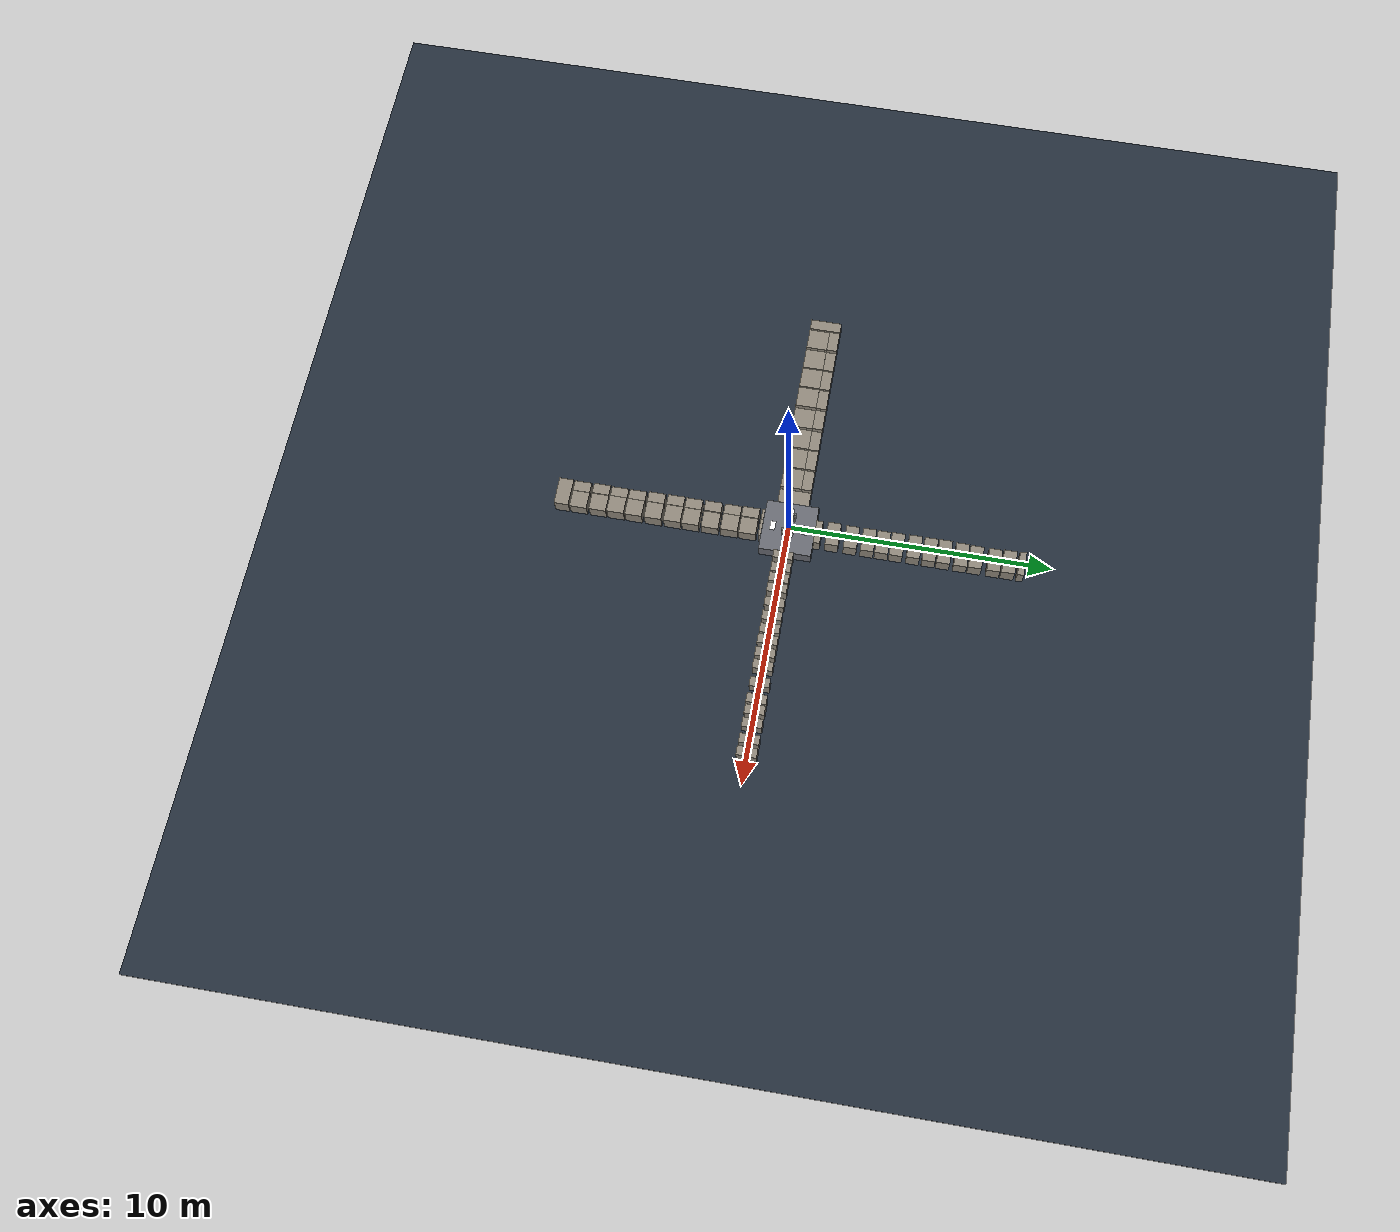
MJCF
<mujoco model="two_row_stones_cross_1_4_7_10">
  <include file="b2.xml"/>
  <statistic center="0 0 0.12" extent="1.35" />
  <visual>
    <headlight diffuse="0.6 0.6 0.6" ambient="0.3 0.3 0.3" specular="0 0 0" />
    <rgba haze="0.15 0.25 0.35 1" />
    <global azimuth="-130" elevation="-20" />
  </visual>
  <asset>
    <texture type="skybox" builtin="gradient" rgb1="0.3 0.5 0.7" rgb2="0 0 0" width="512" height="3072" />
    <texture type="2d" name="groundplane" builtin="checker" mark="edge" rgb1="0.18 0.22 0.28" rgb2="0.10 0.14 0.18" markrgb="0.8 0.8 0.8" width="300" height="300" />
    <material name="groundplane" texture="groundplane" texuniform="true" texrepeat="5 5" reflectance="0.0" />
    <texture name="tex_label_1" type="2d" file="./imgs/label_1.png" />
    <material name="mat_label_1" texture="tex_label_1" specular="0" shininess="0" emission="1" texrepeat="1 1" rgba="1 1 1 1" />
    <texture name="tex_label_7" type="2d" file="./imgs/label_7.png" />
    <material name="mat_label_7" texture="tex_label_7" specular="0" shininess="0" emission="1" texrepeat="1 1" rgba="1 1 1 1" />
    <texture name="tex_label_10" type="2d" file="./imgs/label_10.png" />
    <material name="mat_label_10" texture="tex_label_10" specular="0" shininess="0" emission="1" texrepeat="1 1" rgba="1 1 1 1" />
    <texture name="tex_label_4" type="2d" file="./imgs/label_4.png" />
    <material name="mat_label_4" texture="tex_label_4" specular="0" shininess="0" emission="1" texrepeat="1 1" rgba="1 1 1 1" />
  </asset>
  <worldbody>
    <light pos="0 0 1.5" dir="0 0 -1" directional="true" />

    <geom name="pit_floor" pos="0 0 -0.65" size="20 20 0.05" type="box" material="groundplane" />
    <geom name="hub" pos="0 0 -0.3" type="box" size="1.0 1.0 0.3" rgba="0.40 0.41 0.44 1" />

    <!-- neg_x direction, level 1, curriculum row 0, difficulty=0.0, stone_size=0.80m, gap choices=1..2 cells -->
    <geom name="neg_x_stone_01_merged" pos="-1.275 0 -0.2975" type="box" size="0.275 0.6 0.3025" rgba="0.55 0.52 0.47 1" />
    <geom name="neg_x_stone_02_row_a" pos="-2.05 0.4 -0.2975" type="box" size="0.4 0.2 0.3025" rgba="0.55 0.52 0.47 1" />
    <geom name="neg_x_stone_03_row_b" pos="-2.05 -0.2 -0.29" type="box" size="0.4 0.4 0.31" rgba="0.55 0.52 0.47 1" />
    <geom name="neg_x_stone_04_row_a" pos="-2.9 0.4 -0.2825" type="box" size="0.4 0.2 0.3175" rgba="0.55 0.52 0.47 1" />
    <geom name="neg_x_stone_05_row_b" pos="-2.9 -0.2 -0.29" type="box" size="0.4 0.4 0.31" rgba="0.55 0.52 0.47 1" />
    <geom name="neg_x_stone_06_row_a" pos="-3.75 0.4 -0.2975" type="box" size="0.4 0.2 0.3025" rgba="0.55 0.52 0.47 1" />
    <geom name="neg_x_stone_07_row_b" pos="-3.75 -0.2 -0.2825" type="box" size="0.4 0.4 0.3175" rgba="0.55 0.52 0.47 1" />
    <geom name="neg_x_stone_08_row_a" pos="-4.65 0.4 -0.2825" type="box" size="0.4 0.2 0.3175" rgba="0.55 0.52 0.47 1" />
    <geom name="neg_x_stone_09_row_b" pos="-4.65 -0.2 -0.2975" type="box" size="0.4 0.4 0.3025" rgba="0.55 0.52 0.47 1" />
    <geom name="neg_x_stone_10_row_a" pos="-5.55 0.4 -0.2975" type="box" size="0.4 0.2 0.3025" rgba="0.55 0.52 0.47 1" />
    <geom name="neg_x_stone_11_row_b" pos="-5.55 -0.2 -0.2825" type="box" size="0.4 0.4 0.3175" rgba="0.55 0.52 0.47 1" />
    <geom name="neg_x_stone_12_row_a" pos="-6.4 0.4 -0.29" type="box" size="0.4 0.2 0.31" rgba="0.55 0.52 0.47 1" />
    <geom name="neg_x_stone_13_row_b" pos="-6.4 -0.2 -0.2825" type="box" size="0.4 0.4 0.3175" rgba="0.55 0.52 0.47 1" />
    <geom name="neg_x_stone_14_row_a" pos="-7.25 0.4 -0.2975" type="box" size="0.4 0.2 0.3025" rgba="0.55 0.52 0.47 1" />
    <geom name="neg_x_stone_15_row_b" pos="-7.25 -0.2 -0.29" type="box" size="0.4 0.4 0.31" rgba="0.55 0.52 0.47 1" />
    <geom name="neg_x_stone_16_row_a" pos="-8.15 0.4 -0.2825" type="box" size="0.4 0.2 0.3175" rgba="0.55 0.52 0.47 1" />
    <geom name="neg_x_stone_17_row_b" pos="-8.15 -0.2 -0.2975" type="box" size="0.4 0.4 0.3025" rgba="0.55 0.52 0.47 1" />
    <geom name="neg_x_stone_18_merged" pos="-8.8 0 -0.29" type="box" size="0.2 0.6 0.31" rgba="0.55 0.52 0.47 1" />
    <geom name="neg_x_label" pos="-0.62 0 0.002" type="box" size="0.18 0.1 0.0001" material="mat_label_1" contype="0" conaffinity="0" group="1" rgba="1 1 1 1" />

    <!-- pos_y direction, level 7, curriculum row 6, difficulty=0.6, stone_size=0.50m, gap choices=1..4 cells -->
    <geom name="pos_y_stone_01_row_a" pos="0.25 1.125 -0.2675" type="box" size="0.2 0.125 0.3325" rgba="0.55 0.52 0.47 1" />
    <geom name="pos_y_stone_02_row_b" pos="-0.2 1.125 -0.275" type="box" size="0.25 0.125 0.325" rgba="0.55 0.52 0.47 1" />
    <geom name="pos_y_stone_03_row_a" pos="0.25 1.7 -0.2525" type="box" size="0.2 0.25 0.3475" rgba="0.55 0.52 0.47 1" />
    <geom name="pos_y_stone_04_row_b" pos="-0.2 1.7 -0.245" type="box" size="0.25 0.25 0.355" rgba="0.55 0.52 0.47 1" />
    <geom name="pos_y_stone_05_row_a" pos="0.25 2.4 -0.26" type="box" size="0.2 0.25 0.34" rgba="0.55 0.52 0.47 1" />
    <geom name="pos_y_stone_06_row_b" pos="-0.2 2.4 -0.275" type="box" size="0.25 0.25 0.325" rgba="0.55 0.52 0.47 1" />
    <geom name="pos_y_stone_07_merged" pos="0 3.05 -0.2675" type="box" size="0.45 0.25 0.3325" rgba="0.55 0.52 0.47 1" />
    <geom name="pos_y_stone_08_merged" pos="0 3.6 -0.275" type="box" size="0.45 0.25 0.325" rgba="0.55 0.52 0.47 1" />
    <geom name="pos_y_stone_09_row_a" pos="0.25 4.15 -0.275" type="box" size="0.2 0.25 0.325" rgba="0.55 0.52 0.47 1" />
    <geom name="pos_y_stone_10_row_b" pos="-0.2 4.15 -0.26" type="box" size="0.25 0.25 0.34" rgba="0.55 0.52 0.47 1" />
    <geom name="pos_y_stone_11_row_a" pos="0.25 4.8 -0.2525" type="box" size="0.2 0.25 0.3475" rgba="0.55 0.52 0.47 1" />
    <geom name="pos_y_stone_12_row_b" pos="-0.2 4.8 -0.245" type="box" size="0.25 0.25 0.355" rgba="0.55 0.52 0.47 1" />
    <geom name="pos_y_stone_13_row_a" pos="0.25 5.4 -0.29" type="box" size="0.2 0.25 0.31" rgba="0.55 0.52 0.47 1" />
    <geom name="pos_y_stone_14_row_b" pos="-0.2 5.4 -0.245" type="box" size="0.25 0.25 0.355" rgba="0.55 0.52 0.47 1" />
    <geom name="pos_y_stone_15_row_a" pos="0.25 5.95 -0.2825" type="box" size="0.2 0.25 0.3175" rgba="0.55 0.52 0.47 1" />
    <geom name="pos_y_stone_16_row_b" pos="-0.2 5.95 -0.2375" type="box" size="0.25 0.25 0.3625" rgba="0.55 0.52 0.47 1" />
    <geom name="pos_y_stone_17_row_a" pos="0.25 6.6 -0.29" type="box" size="0.2 0.25 0.31" rgba="0.55 0.52 0.47 1" />
    <geom name="pos_y_stone_18_row_b" pos="-0.2 6.6 -0.2675" type="box" size="0.25 0.25 0.3325" rgba="0.55 0.52 0.47 1" />
    <geom name="pos_y_stone_19_row_a" pos="0.25 7.15 -0.2675" type="box" size="0.2 0.25 0.3325" rgba="0.55 0.52 0.47 1" />
    <geom name="pos_y_stone_20_row_b" pos="-0.2 7.15 -0.29" type="box" size="0.25 0.25 0.31" rgba="0.55 0.52 0.47 1" />
    <geom name="pos_y_stone_21_row_a" pos="0.25 7.85 -0.275" type="box" size="0.2 0.25 0.325" rgba="0.55 0.52 0.47 1" />
    <geom name="pos_y_stone_22_row_b" pos="-0.2 7.85 -0.29" type="box" size="0.25 0.25 0.31" rgba="0.55 0.52 0.47 1" />
    <geom name="pos_y_stone_23_merged" pos="0 8.4 -0.2525" type="box" size="0.45 0.25 0.3475" rgba="0.55 0.52 0.47 1" />
    <geom name="pos_y_stone_24_row_a" pos="0.25 8.875 -0.2525" type="box" size="0.2 0.125 0.3475" rgba="0.55 0.52 0.47 1" />
    <geom name="pos_y_stone_25_row_b" pos="-0.2 8.875 -0.23" type="box" size="0.25 0.125 0.37" rgba="0.55 0.52 0.47 1" />
    <geom name="pos_y_label" pos="0 0.62 0.002" type="box" size="0.1 0.18 0.0001" material="mat_label_7" quat="0.7071067811865476 0 0 0.7071067811865475" contype="0" conaffinity="0" group="1" rgba="1 1 1 1" />

    <!-- pos_x direction, level 10, curriculum row 9, difficulty=0.9, stone_size=0.35m, gap choices=1..6 cells -->
    <geom name="pos_x_stone_01_row_a" pos="1.15 -0.225 -0.2375" type="box" size="0.15 0.175 0.3625" rgba="0.55 0.52 0.47 1" />
    <geom name="pos_x_stone_02_row_b" pos="1.15 0.175 -0.26" type="box" size="0.15 0.175 0.34" rgba="0.55 0.52 0.47 1" />
    <geom name="pos_x_stone_03_row_a" pos="1.625 -0.225 -0.2975" type="box" size="0.175 0.175 0.3025" rgba="0.55 0.52 0.47 1" />
    <geom name="pos_x_stone_04_row_b" pos="1.625 0.175 -0.26" type="box" size="0.175 0.175 0.34" rgba="0.55 0.52 0.47 1" />
    <geom name="pos_x_stone_05_row_a" pos="2.075 -0.225 -0.2375" type="box" size="0.175 0.175 0.3625" rgba="0.55 0.52 0.47 1" />
    <geom name="pos_x_stone_06_row_b" pos="2.075 0.175 -0.2525" type="box" size="0.175 0.175 0.3475" rgba="0.55 0.52 0.47 1" />
    <geom name="pos_x_stone_07_row_a" pos="2.475 -0.225 -0.2675" type="box" size="0.175 0.175 0.3325" rgba="0.55 0.52 0.47 1" />
    <geom name="pos_x_stone_08_row_b" pos="2.475 0.175 -0.245" type="box" size="0.175 0.175 0.355" rgba="0.55 0.52 0.47 1" />
    <geom name="pos_x_stone_09_row_a" pos="3.025 -0.225 -0.275" type="box" size="0.175 0.175 0.325" rgba="0.55 0.52 0.47 1" />
    <geom name="pos_x_stone_10_row_b" pos="3.025 0.175 -0.2975" type="box" size="0.175 0.175 0.3025" rgba="0.55 0.52 0.47 1" />
    <geom name="pos_x_stone_11_row_a" pos="3.575 -0.225 -0.29" type="box" size="0.175 0.175 0.31" rgba="0.55 0.52 0.47 1" />
    <geom name="pos_x_stone_12_row_b" pos="3.575 0.175 -0.2525" type="box" size="0.175 0.175 0.3475" rgba="0.55 0.52 0.47 1" />
    <geom name="pos_x_stone_13_row_a" pos="4.075 -0.225 -0.2975" type="box" size="0.175 0.175 0.3025" rgba="0.55 0.52 0.47 1" />
    <geom name="pos_x_stone_14_row_b" pos="4.075 0.175 -0.2525" type="box" size="0.175 0.175 0.3475" rgba="0.55 0.52 0.47 1" />
    <geom name="pos_x_stone_15_row_a" pos="4.525 -0.225 -0.2525" type="box" size="0.175 0.175 0.3475" rgba="0.55 0.52 0.47 1" />
    <geom name="pos_x_stone_16_row_b" pos="4.525 0.175 -0.2675" type="box" size="0.175 0.175 0.3325" rgba="0.55 0.52 0.47 1" />
    <geom name="pos_x_stone_17_row_a" pos="5.025 -0.225 -0.26" type="box" size="0.175 0.175 0.34" rgba="0.55 0.52 0.47 1" />
    <geom name="pos_x_stone_18_row_b" pos="5.025 0.175 -0.2675" type="box" size="0.175 0.175 0.3325" rgba="0.55 0.52 0.47 1" />
    <geom name="pos_x_stone_19_row_a" pos="5.525 -0.225 -0.23" type="box" size="0.175 0.175 0.37" rgba="0.55 0.52 0.47 1" />
    <geom name="pos_x_stone_20_row_b" pos="5.525 0.175 -0.2825" type="box" size="0.175 0.175 0.3175" rgba="0.55 0.52 0.47 1" />
    <geom name="pos_x_stone_21_row_a" pos="6.175 -0.225 -0.2975" type="box" size="0.175 0.175 0.3025" rgba="0.55 0.52 0.47 1" />
    <geom name="pos_x_stone_22_row_b" pos="6.175 0.175 -0.245" type="box" size="0.175 0.175 0.355" rgba="0.55 0.52 0.47 1" />
    <geom name="pos_x_stone_23_row_a" pos="6.825 -0.225 -0.2375" type="box" size="0.175 0.175 0.3625" rgba="0.55 0.52 0.47 1" />
    <geom name="pos_x_stone_24_row_b" pos="6.825 0.175 -0.2375" type="box" size="0.175 0.175 0.3625" rgba="0.55 0.52 0.47 1" />
    <geom name="pos_x_stone_25_row_a" pos="7.225 -0.225 -0.2975" type="box" size="0.175 0.175 0.3025" rgba="0.55 0.52 0.47 1" />
    <geom name="pos_x_stone_26_row_b" pos="7.225 0.175 -0.245" type="box" size="0.175 0.175 0.355" rgba="0.55 0.52 0.47 1" />
    <geom name="pos_x_stone_27_row_a" pos="7.725 -0.225 -0.2975" type="box" size="0.175 0.175 0.3025" rgba="0.55 0.52 0.47 1" />
    <geom name="pos_x_stone_28_row_b" pos="7.725 0.175 -0.245" type="box" size="0.175 0.175 0.355" rgba="0.55 0.52 0.47 1" />
    <geom name="pos_x_stone_29_row_a" pos="8.325 -0.225 -0.29" type="box" size="0.175 0.175 0.31" rgba="0.55 0.52 0.47 1" />
    <geom name="pos_x_stone_30_row_b" pos="8.325 0.175 -0.29" type="box" size="0.175 0.175 0.31" rgba="0.55 0.52 0.47 1" />
    <geom name="pos_x_stone_31_row_a" pos="8.825 -0.225 -0.23" type="box" size="0.175 0.175 0.37" rgba="0.55 0.52 0.47 1" />
    <geom name="pos_x_stone_32_row_b" pos="8.825 0.175 -0.26" type="box" size="0.175 0.175 0.34" rgba="0.55 0.52 0.47 1" />
    <geom name="pos_x_label" pos="0.62 0 0.002" type="box" size="0.18 0.1 0.0001" material="mat_label_10" contype="0" conaffinity="0" group="1" rgba="1 1 1 1" />

    <!-- neg_y direction, level 4, curriculum row 3, difficulty=0.3, stone_size=0.65m, gap choices=1..2 cells -->
    <geom name="neg_y_stone_01_row_a" pos="-0.35 -1.05 -0.2525" type="box" size="0.2 0.05 0.3475" rgba="0.55 0.52 0.47 1" />
    <geom name="neg_y_stone_02_row_b" pos="0.175 -1.05 -0.2675" type="box" size="0.325 0.05 0.3325" rgba="0.55 0.52 0.47 1" />
    <geom name="neg_y_stone_03_row_a" pos="-0.35 -1.525 -0.2525" type="box" size="0.2 0.325 0.3475" rgba="0.55 0.52 0.47 1" />
    <geom name="neg_y_stone_04_row_b" pos="0.175 -1.525 -0.2825" type="box" size="0.325 0.325 0.3175" rgba="0.55 0.52 0.47 1" />
    <geom name="neg_y_stone_05_row_a" pos="-0.35 -2.225 -0.275" type="box" size="0.2 0.325 0.325" rgba="0.55 0.52 0.47 1" />
    <geom name="neg_y_stone_06_row_b" pos="0.175 -2.225 -0.26" type="box" size="0.325 0.325 0.34" rgba="0.55 0.52 0.47 1" />
    <geom name="neg_y_stone_07_row_a" pos="-0.35 -2.975 -0.26" type="box" size="0.2 0.325 0.34" rgba="0.55 0.52 0.47 1" />
    <geom name="neg_y_stone_08_row_b" pos="0.175 -2.975 -0.2975" type="box" size="0.325 0.325 0.3025" rgba="0.55 0.52 0.47 1" />
    <geom name="neg_y_stone_09_row_a" pos="-0.35 -3.725 -0.2675" type="box" size="0.2 0.325 0.3325" rgba="0.55 0.52 0.47 1" />
    <geom name="neg_y_stone_10_row_b" pos="0.175 -3.725 -0.275" type="box" size="0.325 0.325 0.325" rgba="0.55 0.52 0.47 1" />
    <geom name="neg_y_stone_11_row_a" pos="-0.35 -4.425 -0.2525" type="box" size="0.2 0.325 0.3475" rgba="0.55 0.52 0.47 1" />
    <geom name="neg_y_stone_12_row_b" pos="0.175 -4.425 -0.2675" type="box" size="0.325 0.325 0.3325" rgba="0.55 0.52 0.47 1" />
    <geom name="neg_y_stone_13_row_a" pos="-0.35 -5.175 -0.26" type="box" size="0.2 0.325 0.34" rgba="0.55 0.52 0.47 1" />
    <geom name="neg_y_stone_14_row_b" pos="0.175 -5.175 -0.2675" type="box" size="0.325 0.325 0.3325" rgba="0.55 0.52 0.47 1" />
    <geom name="neg_y_stone_15_row_a" pos="-0.35 -5.925 -0.2975" type="box" size="0.2 0.325 0.3025" rgba="0.55 0.52 0.47 1" />
    <geom name="neg_y_stone_16_row_b" pos="0.175 -5.925 -0.2675" type="box" size="0.325 0.325 0.3325" rgba="0.55 0.52 0.47 1" />
    <geom name="neg_y_stone_17_row_a" pos="-0.35 -6.625 -0.2975" type="box" size="0.2 0.325 0.3025" rgba="0.55 0.52 0.47 1" />
    <geom name="neg_y_stone_18_row_b" pos="0.175 -6.625 -0.26" type="box" size="0.325 0.325 0.34" rgba="0.55 0.52 0.47 1" />
    <geom name="neg_y_stone_19_row_a" pos="-0.35 -7.325 -0.2675" type="box" size="0.2 0.325 0.3325" rgba="0.55 0.52 0.47 1" />
    <geom name="neg_y_stone_20_row_b" pos="0.175 -7.325 -0.29" type="box" size="0.325 0.325 0.31" rgba="0.55 0.52 0.47 1" />
    <geom name="neg_y_stone_21_row_a" pos="-0.35 -8.075 -0.29" type="box" size="0.2 0.325 0.31" rgba="0.55 0.52 0.47 1" />
    <geom name="neg_y_stone_22_row_b" pos="0.175 -8.075 -0.2975" type="box" size="0.325 0.325 0.3025" rgba="0.55 0.52 0.47 1" />
    <geom name="neg_y_stone_23_merged" pos="-0.025 -8.725 -0.2675" type="box" size="0.525 0.275 0.3325" rgba="0.55 0.52 0.47 1" />
    <geom name="neg_y_label" pos="0 -0.62 0.002" type="box" size="0.1 0.18 0.0001" material="mat_label_4" quat="0.7071067811865476 0 0 -0.7071067811865475" contype="0" conaffinity="0" group="1" rgba="1 1 1 1" />
  </worldbody>
  <keyframe>
    <key name="b2_start" qpos="0 0 0.64 1 0 0 0 0.1 0.8 -1.5 -0.1 0.8 -1.5 0.1 1.0 -1.5 -0.1 1.0 -1.5"/>
  </keyframe>
</mujoco>

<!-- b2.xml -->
<mujoco model="b2_description">
  <compiler angle="radian" meshdir="assets" />
  <statistic meansize="0.25" extent="2.0" center="0 0 -0.35" />
  <default>
    <joint damping="0.02" armature="0.02" frictionloss="0.05" />
    <geom condim="3" friction="0.9 0.02 0.01" />
    <default class="visual">
      <geom type="mesh" contype="0" conaffinity="0" group="2" />
    </default>
  </default>
  <asset>
    <material name="b2_body" rgba="0.78 0.78 0.74 1" />
    <material name="black" rgba="0.06 0.06 0.06 1" />
    <mesh name="FL_calf_mesh" file="FL_calf.obj" />
    <mesh name="FL_hip_mesh" file="FL_hip.obj" />
    <mesh name="FL_thigh_mesh" file="FL_thigh.obj" />
    <mesh name="FR_calf_mesh" file="FR_calf.obj" />
    <mesh name="FR_hip_mesh" file="FR_hip.obj" />
    <mesh name="FR_thigh_mesh" file="FR_thigh.obj" />
    <mesh name="RL_calf_mesh" file="RL_calf.obj" />
    <mesh name="RL_hip_mesh" file="RL_hip.obj" />
    <mesh name="RL_thigh_mesh" file="RL_thigh.obj" />
    <mesh name="RR_calf_mesh" file="RR_calf.obj" />
    <mesh name="RR_hip_mesh" file="RR_hip.obj" />
    <mesh name="RR_thigh_mesh" file="RR_thigh.obj" />
    <mesh name="base_link_mesh" file="base_link.obj" />
  </asset>
  <worldbody>
    <body name="base" pos="0 0 0.58">
      <inertial pos="0.000458 0.005261 0.000665" mass="35.86" fullinertia="0.27466 1.0618 1.1825 -0.000622 0.00315 -0.00139" />
      <freejoint name="root" />
      <geom name="base_visual_0" mesh="base_link_mesh" material="b2_body" class="visual" />
      <geom name="base_collision_0" type="box" size="0.25 0.14 0.075" />
      <body pos="0.34218 0 0.17851" name="lidar_link">
        <geom pos="0 0 -0.02" name="lidar_link_collision_0" type="cylinder" size="0.076 0.08" />
      </body>
      <body pos="0.41251 0.024997 0.04765" quat="0.27059575 -0.65328103 0.65328343 -0.27059675" name="f_dc_link" />
      <body pos="-0.4081 -0.025 0.024861" quat="0.27075907 -0.65321336 -0.65321576 0.27076006" name="r_dc_link" />
      <body pos="0 -0.02341 0.04927" name="imu_link" />
      <body name="head_Link">
        <inertial pos="0.33989 -0.000168 0.12029" mass="3.6885" fullinertia="0.026455 0.029221 0.010918 3.15e-05 0.00166 -3.27e-05" />
        <geom pos="0.41 0 0.005" name="head_Link_collision_0" type="box" size="0.02 0.06 0.07" />
      </body>
      <body name="tail_link">
        <inertial pos="-0.37448 0.000488 0.006495" mass="0.795" fullinertia="0.0028118 0.0047506 0.0029154 1.95e-05 -7.87e-06 -1.57e-05" />
        <geom pos="-0.405 0 0.005" name="tail_link_collision_0" type="box" size="0.0125 0.06 0.07" />
      </body>
      <body pos="0.3285 0.072 0" name="FL_hip">
        <inertial pos="-0.003841 -0.009068 0" mass="2.673" fullinertia="0.0033188 0.0048743 0.0037087 7.16e-05 -3.77e-07 4e-09" />
        <joint name="FL_hip_joint" axis="1 0 0" range="-0.87 0.87" actuatorfrcrange="-200 200" />
        <geom name="FL_hip_visual_0" mesh="FL_hip_mesh" material="b2_body" class="visual" />
        <geom pos="0 0.12 0" quat="0.70710678 0.70710678 0 0" name="FL_hip_collision_0" type="cylinder" size="0.07 0.025" />
        <body pos="0 0.11973 0" name="FL_thigh">
          <inertial pos="-0.006279 -0.032049 -0.057835" mass="4.536" fullinertia="0.062299 0.061399 0.0081997 0.00087781 -0.0036475 0.0083537" />
          <joint name="FL_thigh_joint" axis="0 1 0" range="-0.94 4.69" actuatorfrcrange="-200 200" />
          <geom name="FL_thigh_visual_0" mesh="FL_thigh_mesh" material="b2_body" class="visual" />
          <geom pos="-0.025 0 -0.16" quat="0.70738827 0 0.70682518 0" name="FL_thigh_collision_0" type="box" size="0.16 0.02225 0.027" />
          <body pos="0 -8.6984e-05 -0.35" name="FL_calf">
            <inertial pos="0.012422 0 -0.12499" mass="0.404" fullinertia="0.01143 0.011534 0.000331 0 0.000643 0" />
            <joint name="FL_calf_joint" axis="0 1 0" range="-2.82 -0.43" actuatorfrcrange="-320 320" />
            <geom name="FL_calf_visual_0" mesh="FL_calf_mesh" material="b2_body" class="visual" />
            <geom pos="-0.002 0 -0.03" quat="0.82533561 0 0.56464247 0" name="FL_calf_collision_0" type="box" size="0.05 0.01225 0.009" />
            <geom pos="0.022 0 -0.1" quat="0.78070695 0 0.62489732 0" name="FL_calf_collision_1" type="box" size="0.05 0.01225 0.009" />
            <geom pos="0.036 0 -0.225" quat="0.72138236 0 0.692537 0" name="FL_calf_collision_2" type="box" size="0.075 0.01225 0.0075" />
            <geom pos="0.023 0 -0.31" quat="0.54030231 0 0.84147098 0" name="FL_calf_collision_3" type="box" size="0.025 0.014 0.0175" />
            <body pos="0 0 -0.35" name="FL_foot">
              <inertial pos="-0.006511 0 -0.010144" mass="0.126" fullinertia="3.8e-05 4.1e-05 4.2e-05 0 1.1e-05 0" />
              <geom quat="0.70738827 0.70682518 0 0" name="FL_foot_collision_0" type="sphere" size="0.032" />
            </body>
          </body>
          <body pos="0 -0.05788 0" name="FL_calf_rotor">
            <inertial pos="0 0 0" mass="0.2734" fullinertia="0.000144463 0.000144463 0.000263053 0 0 0" />
            <geom quat="0.70710678 0.70710678 0 0" name="FL_calf_rotor_collision_0" type="cylinder" size="0.05 0.01" />
          </body>
        </body>
        <body pos="0 -0.00798 0" name="FL_thigh_rotor">
          <inertial pos="0 0 0" mass="0.2734" fullinertia="0.000144463 0.000144463 0.000263053 0 0 0" />
          <geom quat="0.70710678 0.70710678 0 0" name="FL_thigh_rotor_collision_0" type="cylinder" size="0.05 0.01" />
        </body>
      </body>
      <body pos="0.20205 0.072 0" name="FL_hip_rotor">
        <inertial pos="0 0 0" mass="0.2734" fullinertia="0.000144463 0.000144463 0.000263053 0 0 0" />
        <geom quat="0.70710678 0 0.70710678 0" name="FL_hip_rotor_collision_0" type="cylinder" size="0.05 0.01" />
      </body>
      <body pos="0.3285 -0.072 0" name="FR_hip">
        <inertial pos="-0.009305 0.010228 0.000264" mass="2.673" fullinertia="0.0026431 0.0046728 0.0034208 -0.00019234 -6.76e-06 7.16e-06" />
        <joint name="FR_hip_joint" axis="1 0 0" range="-0.87 0.87" actuatorfrcrange="-200 200" />
        <geom name="FR_hip_visual_0" mesh="FR_hip_mesh" material="b2_body" class="visual" />
        <geom pos="0 -0.12 0" quat="0.70710678 0.70710678 0 0" name="FR_hip_collision_0" type="cylinder" size="0.07 0.025" />
        <body pos="0 -0.11973 0" name="FR_thigh">
          <inertial pos="-0.006279 0.032049 -0.057835" mass="4.536" fullinertia="0.06229908 0.06139927 0.008199745 -0.000877808 -0.003647464 -0.008353671" />
          <joint name="FR_thigh_joint" axis="0 1 0" range="-0.94 4.69" actuatorfrcrange="-200 200" />
          <geom name="FR_thigh_visual_0" mesh="FR_thigh_mesh" material="b2_body" class="visual" />
          <geom pos="-0.03 0 -0.2" quat="0.70738827 0 0.70682518 0" name="FR_thigh_collision_0" type="box" size="0.125 0.014 0.02" />
          <body pos="0 8.6986e-05 -0.35" name="FR_calf">
            <inertial pos="0.012422 0 -0.12499" mass="0.404" fullinertia="0.01143 0.011534 0.000331 0 0.000643 0" />
            <joint name="FR_calf_joint" axis="0 1 0" range="-2.82 -0.43" actuatorfrcrange="-320 320" />
            <geom name="FR_calf_visual_0" mesh="FR_calf_mesh" material="b2_body" class="visual" />
            <geom pos="-0.002 0 -0.03" quat="0.82533561 0 0.56464247 0" name="FR_calf_collision_0" type="box" size="0.05 0.01225 0.009" />
            <geom pos="0.022 0 -0.1" quat="0.78070695 0 0.62489732 0" name="FR_calf_collision_1" type="box" size="0.05 0.01225 0.009" />
            <geom pos="0.036 0 -0.225" quat="0.72138236 0 0.692537 0" name="FR_calf_collision_2" type="box" size="0.075 0.01225 0.0075" />
            <geom pos="0.023 0 -0.31" quat="0.54030231 0 0.84147098 0" name="FR_calf_collision_3" type="box" size="0.025 0.014 0.0175" />
            <body pos="0 0 -0.35" name="FR_foot">
              <inertial pos="-0.006511 0 -0.010144" mass="0.126" fullinertia="3.8e-05 4.1e-05 4.2e-05 0 1.1e-05 0" />
              <geom quat="0.70738827 0.70682518 0 0" name="FR_foot_collision_0" type="sphere" size="0.032" />
            </body>
          </body>
          <body pos="0 0.05788 0" name="FR_calf_rotor">
            <inertial pos="0 0 0" mass="0.2734" fullinertia="0.000144463 0.000144463 0.000263053 0 0 0" />
            <geom quat="0.70710678 0.70710678 0 0" name="FR_calf_rotor_collision_0" type="cylinder" size="0.05 0.01" />
          </body>
        </body>
        <body pos="0 0.00798 0" name="FR_thigh_rotor">
          <inertial pos="0 0 0" mass="0.2734" fullinertia="0.000144463 0.000144463 0.000263053 0 0 0" />
          <geom quat="0.70710678 0.70710678 0 0" name="FR_thigh_rotor_collision_0" type="cylinder" size="0.05 0.01" />
        </body>
      </body>
      <body pos="0.20205 -0.072 0" name="FR_hip_rotor">
        <inertial pos="0 0 0" mass="0.2734" fullinertia="0.000144463 0.000144463 0.000263053 0 0 0" />
        <geom quat="0.70710678 0 0.70710678 0" name="FR_hip_rotor_collision_0" type="cylinder" size="0.05 0.01" />
      </body>
      <body pos="-0.3285 0.072 0" name="RL_hip">
        <inertial pos="0.009305 -0.010228 0.000264" mass="2.673" fullinertia="0.0026431 0.0046728 0.0034208 -0.00019234 6.76e-06 -7.16e-06" />
        <joint name="RL_hip_joint" axis="1 0 0" range="-0.87 0.87" actuatorfrcrange="-200 200" />
        <geom name="RL_hip_visual_0" mesh="RL_hip_mesh" material="b2_body" class="visual" />
        <geom pos="0 0.12 0" quat="0.70710678 0.70710678 0 0" name="RL_hip_collision_0" type="cylinder" size="0.07 0.025" />
        <body pos="0 0.11973 0" name="RL_thigh">
          <inertial pos="-0.006279 -0.032049 -0.057835" mass="4.536" fullinertia="0.06229908 0.06139927 0.008199745 0.000877808 -0.003647464 0.008353671" />
          <joint name="RL_thigh_joint" axis="0 1 0" range="-0.94 4.69" actuatorfrcrange="-200 200" />
          <geom name="RL_thigh_visual_0" mesh="RL_thigh_mesh" material="b2_body" class="visual" />
          <geom pos="-0.03 0 -0.2" quat="0.70738827 0 0.70682518 0" name="RL_thigh_collision_0" type="box" size="0.125 0.014 0.02" />
          <body pos="0 -8.6984e-05 -0.35" name="RL_calf">
            <inertial pos="0.012422 0 -0.12499" mass="0.404" fullinertia="0.01143 0.011534 0.000331 0 0.000643 0" />
            <joint name="RL_calf_joint" axis="0 1 0" range="-2.82 -0.43" actuatorfrcrange="-320 320" />
            <geom name="RL_calf_visual_0" mesh="RL_calf_mesh" material="b2_body" class="visual" />
            <geom pos="-0.002 0 -0.03" quat="0.82533561 0 0.56464247 0" name="RL_calf_collision_0" type="box" size="0.05 0.01225 0.009" />
            <geom pos="0.022 0 -0.1" quat="0.78070695 0 0.62489732 0" name="RL_calf_collision_1" type="box" size="0.05 0.01225 0.009" />
            <geom pos="0.036 0 -0.225" quat="0.72138236 0 0.692537 0" name="RL_calf_collision_2" type="box" size="0.075 0.01225 0.0075" />
            <geom pos="0.023 0 -0.31" quat="0.54030231 0 0.84147098 0" name="RL_calf_collision_3" type="box" size="0.025 0.014 0.0175" />
            <body pos="0 0 -0.35" name="RL_foot">
              <inertial pos="-0.006511 0 -0.010144" mass="0.126" fullinertia="3.8e-05 4.1e-05 4.2e-05 0 1.1e-05 0" />
              <geom quat="0.70738827 0.70682518 0 0" name="RL_foot_collision_0" type="sphere" size="0.032" />
            </body>
          </body>
          <body pos="0 -0.05788 0" name="RL_calf_rotor">
            <inertial pos="0 0 0" mass="0.2734" fullinertia="0.000144463 0.000144463 0.000263053 0 0 0" />
            <geom quat="0.70710678 0.70710678 0 0" name="RL_calf_rotor_collision_0" type="cylinder" size="0.05 0.01" />
          </body>
        </body>
        <body pos="0 -0.00798 0" name="RL_thigh_rotor">
          <inertial pos="0 0 0" mass="0.2734" fullinertia="0.000144463 0.000144463 0.000263053 0 0 0" />
          <geom quat="0.70710678 0.70710678 0 0" name="RL_thigh_rotor_collision_0" type="cylinder" size="0.05 0.01" />
        </body>
      </body>
      <body pos="-0.20205 0.072 0" name="RL_hip_rotor">
        <inertial pos="0 0 0" mass="0.2734" fullinertia="0.000144463 0.000144463 0.000263053 0 0 0" />
        <geom quat="0.70710678 0 0.70710678 0" name="RL_hip_rotor_collision_0" type="cylinder" size="0.05 0.01" />
      </body>
      <body pos="-0.3285 -0.072 0" name="RR_hip">
        <inertial pos="0.003841 0.009068 0" mass="2.673" fullinertia="0.0033188 0.0048743 0.0037087 7.16e-05 3.77e-07 -4e-09" />
        <joint name="RR_hip_joint" axis="1 0 0" range="-0.87 0.87" actuatorfrcrange="-200 200" />
        <geom name="RR_hip_visual_0" mesh="RR_hip_mesh" material="b2_body" class="visual" />
        <geom pos="0 -0.12 0" quat="0.70710678 0.70710678 0 0" name="RR_hip_collision_0" type="cylinder" size="0.07 0.025" />
        <body pos="0 -0.11973 0" name="RR_thigh">
          <inertial pos="-0.006279 0.032049 -0.057835" mass="4.536" fullinertia="0.062299 0.061399 0.0081997 -0.00087781 -0.0036475 -0.0083537" />
          <joint name="RR_thigh_joint" axis="0 1 0" range="-0.94 4.69" actuatorfrcrange="-200 200" />
          <geom name="RR_thigh_visual_0" mesh="RR_thigh_mesh" material="b2_body" class="visual" />
          <geom pos="-0.03 0 -0.2" quat="0.70738827 0 0.70682518 0" name="RR_thigh_collision_0" type="box" size="0.125 0.014 0.02" />
          <body pos="0 8.6986e-05 -0.35" name="RR_calf">
            <inertial pos="0.012422 0 -0.12499" mass="0.404" fullinertia="0.01143 0.011534 0.000331 0 0.000643 0" />
            <joint name="RR_calf_joint" axis="0 1 0" range="-2.82 -0.43" actuatorfrcrange="-320 320" />
            <geom name="RR_calf_visual_0" mesh="RR_calf_mesh" material="b2_body" class="visual" />
            <geom pos="-0.002 0 -0.03" quat="0.82533561 0 0.56464247 0" name="RR_calf_collision_0" type="box" size="0.05 0.01225 0.009" />
            <geom pos="0.022 0 -0.1" quat="0.78070695 0 0.62489732 0" name="RR_calf_collision_1" type="box" size="0.05 0.01225 0.009" />
            <geom pos="0.036 0 -0.225" quat="0.72138236 0 0.692537 0" name="RR_calf_collision_2" type="box" size="0.075 0.01225 0.0075" />
            <geom pos="0.023 0 -0.31" quat="0.54030231 0 0.84147098 0" name="RR_calf_collision_3" type="box" size="0.025 0.014 0.0175" />
            <body pos="0 -8.6984e-05 -0.35" name="RR_foot">
              <inertial pos="-0.006511 0 -0.010144" mass="0.126" fullinertia="3.8e-05 4.1e-05 4.2e-05 0 1.1e-05 0" />
              <geom quat="0.70738827 0.70682518 0 0" name="RR_foot_collision_0" type="sphere" size="0.032" />
            </body>
          </body>
          <body pos="0 0.05788 0" name="RR_calf_rotor">
            <inertial pos="0 0 0" mass="0.2734" fullinertia="0.000144463 0.000144463 0.000263053 0 0 0" />
            <geom quat="0.70710678 0.70710678 0 0" name="RR_calf_rotor_collision_0" type="cylinder" size="0.05 0.01" />
          </body>
        </body>
        <body pos="0 0.00798 0" name="RR_thigh_rotor">
          <inertial pos="0 0 0" mass="0.2734" fullinertia="0.000144463 0.000144463 0.000263053 0 0 0" />
          <geom quat="0.70710678 0.70710678 0 0" name="RR_thigh_rotor_collision_0" type="cylinder" size="0.05 0.01" />
        </body>
      </body>
      <body pos="-0.20205 -0.072 0" name="RR_hip_rotor">
        <inertial pos="0 0 0" mass="0.2734" fullinertia="0.000144463 0.000144463 0.000263053 0 0 0" />
        <geom quat="0.70710678 0 0.70710678 0" name="RR_hip_rotor_collision_0" type="cylinder" size="0.05 0.01" />
      </body>
      <body pos="0.39079 0 -0.013433" quat="0.49999816 -0.5 0.50000184 -0.5" name="f_oc_link" />
      <body pos="-0.38451 0 -0.023249" quat="0.49999816 -0.5 -0.50000184 0.5" name="r_oc_link" />
    </body>
  </worldbody>
  <contact>
    <!-- Training disables robot self-collisions; keep same-leg internal contacts from locking the leg. -->
    <exclude body1="base" body2="FL_hip_rotor" />
    <exclude body1="FL_hip" body2="FL_hip_rotor" />
    <exclude body1="FL_hip" body2="FL_thigh" />
    <exclude body1="FL_hip" body2="FL_thigh_rotor" />
    <exclude body1="FL_thigh" body2="FL_thigh_rotor" />
    <exclude body1="FL_thigh" body2="FL_calf" />
    <exclude body1="FL_thigh" body2="FL_calf_rotor" />
    <exclude body1="FL_calf" body2="FL_calf_rotor" />
    <exclude body1="FL_calf" body2="FL_foot" />
    <exclude body1="base" body2="FR_hip_rotor" />
    <exclude body1="FR_hip" body2="FR_hip_rotor" />
    <exclude body1="FR_hip" body2="FR_thigh" />
    <exclude body1="FR_hip" body2="FR_thigh_rotor" />
    <exclude body1="FR_thigh" body2="FR_thigh_rotor" />
    <exclude body1="FR_thigh" body2="FR_calf" />
    <exclude body1="FR_thigh" body2="FR_calf_rotor" />
    <exclude body1="FR_calf" body2="FR_calf_rotor" />
    <exclude body1="FR_calf" body2="FR_foot" />
    <exclude body1="base" body2="RL_hip_rotor" />
    <exclude body1="RL_hip" body2="RL_hip_rotor" />
    <exclude body1="RL_hip" body2="RL_thigh" />
    <exclude body1="RL_hip" body2="RL_thigh_rotor" />
    <exclude body1="RL_thigh" body2="RL_thigh_rotor" />
    <exclude body1="RL_thigh" body2="RL_calf" />
    <exclude body1="RL_thigh" body2="RL_calf_rotor" />
    <exclude body1="RL_calf" body2="RL_calf_rotor" />
    <exclude body1="RL_calf" body2="RL_foot" />
    <exclude body1="base" body2="RR_hip_rotor" />
    <exclude body1="RR_hip" body2="RR_hip_rotor" />
    <exclude body1="RR_hip" body2="RR_thigh" />
    <exclude body1="RR_hip" body2="RR_thigh_rotor" />
    <exclude body1="RR_thigh" body2="RR_thigh_rotor" />
    <exclude body1="RR_thigh" body2="RR_calf" />
    <exclude body1="RR_calf" body2="RR_calf_rotor" />
    <exclude body1="RR_thigh" body2="RR_calf_rotor" />
    <exclude body1="RR_calf" body2="RR_foot" />
  </contact>
  <actuator>
    <motor name="FL_hip" joint="FL_hip_joint" ctrllimited="true" ctrlrange="-200 200" />
    <motor name="FL_thigh" joint="FL_thigh_joint" ctrllimited="true" ctrlrange="-200 200" />
    <motor name="FL_calf" joint="FL_calf_joint" ctrllimited="true" ctrlrange="-320 320" />
    <motor name="FR_hip" joint="FR_hip_joint" ctrllimited="true" ctrlrange="-200 200" />
    <motor name="FR_thigh" joint="FR_thigh_joint" ctrllimited="true" ctrlrange="-200 200" />
    <motor name="FR_calf" joint="FR_calf_joint" ctrllimited="true" ctrlrange="-320 320" />
    <motor name="RL_hip" joint="RL_hip_joint" ctrllimited="true" ctrlrange="-200 200" />
    <motor name="RL_thigh" joint="RL_thigh_joint" ctrllimited="true" ctrlrange="-200 200" />
    <motor name="RL_calf" joint="RL_calf_joint" ctrllimited="true" ctrlrange="-320 320" />
    <motor name="RR_hip" joint="RR_hip_joint" ctrllimited="true" ctrlrange="-200 200" />
    <motor name="RR_thigh" joint="RR_thigh_joint" ctrllimited="true" ctrlrange="-200 200" />
    <motor name="RR_calf" joint="RR_calf_joint" ctrllimited="true" ctrlrange="-320 320" />
  </actuator>
</mujoco>
